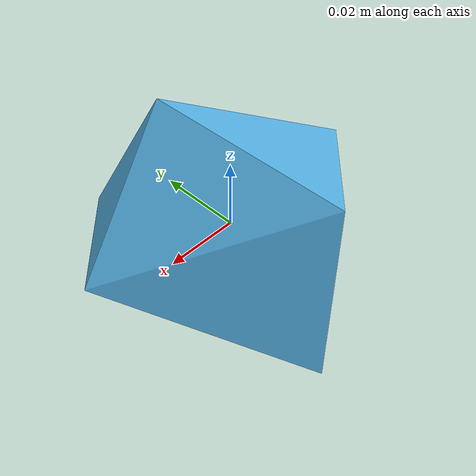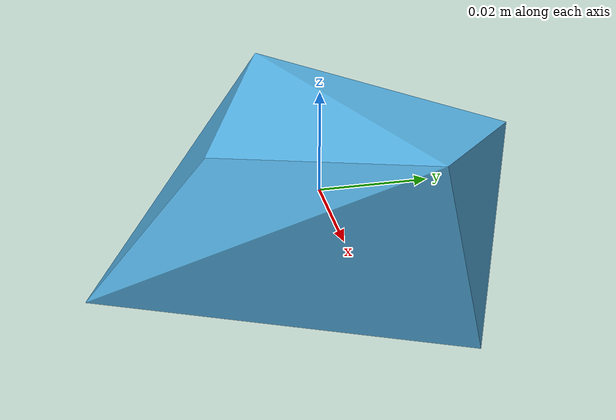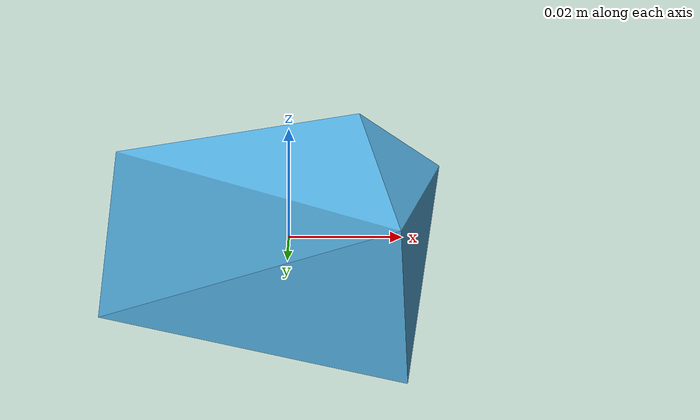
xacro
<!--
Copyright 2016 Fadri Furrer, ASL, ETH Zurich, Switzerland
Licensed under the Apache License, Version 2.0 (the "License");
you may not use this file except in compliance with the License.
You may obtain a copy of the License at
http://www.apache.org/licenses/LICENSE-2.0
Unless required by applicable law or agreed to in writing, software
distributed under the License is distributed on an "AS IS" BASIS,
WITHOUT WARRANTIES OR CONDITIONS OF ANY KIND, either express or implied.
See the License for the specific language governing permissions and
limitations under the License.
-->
<?xml version="1.0"?>

<robot name="5_poly" xmlns:xacro="http://ros.org/wiki/xacro">
  <xacro:property name="mesh_file" value="package://urdf_models/models/polygons/5_poly.stl" />
  <xacro:property name="mass" value="1.0" />
  <link name="base_link"></link>

  <joint name="base_joint" type="fixed">
    <origin xyz="0 0 0" rpy="0 0 0" />
    <parent link="base_link" />
    <child link="base_link_inertia" />
  </joint>
  <link name="base_link_inertia">
      <inertial>
        <mass value="${mass}" />  <!-- [kg] -->
        <origin xyz="0.008764e-01 0.010792e-01 -0.014634e-01" />
        <inertia ixx="0.002472e-01" ixy="0.0" 			ixz="0.0"
                			    	iyy="0.002012e-01"  iyz="0.0"
                 										izz="0.003289e-01" />
      </inertial>

      <visual>
        <origin xyz="0 0 0" rpy="0 0 0" />
        <geometry>
          <mesh filename="${mesh_file}" scale="1 1 1" />
        </geometry>

      </visual>

      <collision>
        <origin xyz="0 0 0" rpy="0 0 0" />
        <geometry>
          <mesh filename="${mesh_file}" scale="1 1 1" />
        </geometry>
      </collision>
    </link>

  <gazebo reference="base_link">
      <mu1 value="1.2"/>
      <mu2 value="1.1"/>
      <kp  value="5000000.0" />
      <kd  value="1.0" />
      <fdir1 value="1 0 0"/>
      <collision>
	        <surface>
	          <bounce>
	            <restitution_coefficient> 0.1 </restitution_coefficient>
	            <threshold>0.</threshold>
	          </bounce>
		      <contact>
		          <ode>
		            <max_vel>0.1</max_vel>
		            <min_depth>0.001</min_depth>
		          </ode>
		      </contact>
	        </surface>
	   </collision>
      <material name="Gray">
	    <color rgba="0.8 0.8 0.8 1"/>
	  </material>
      <turnGravityOff>false</turnGravityOff>
  </gazebo>

</robot>
